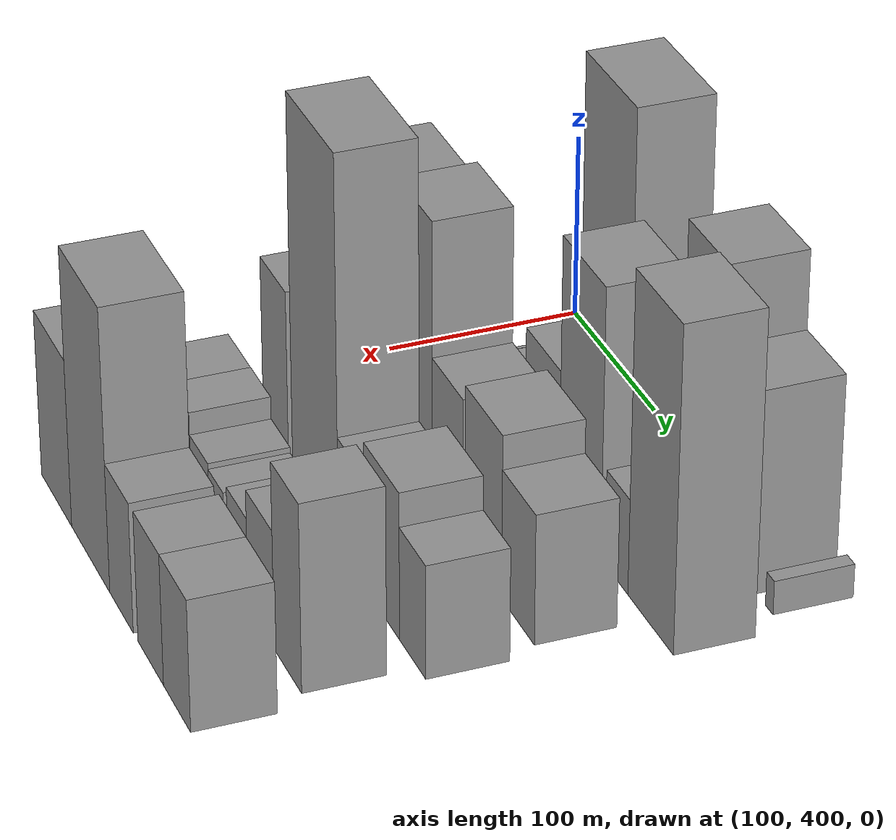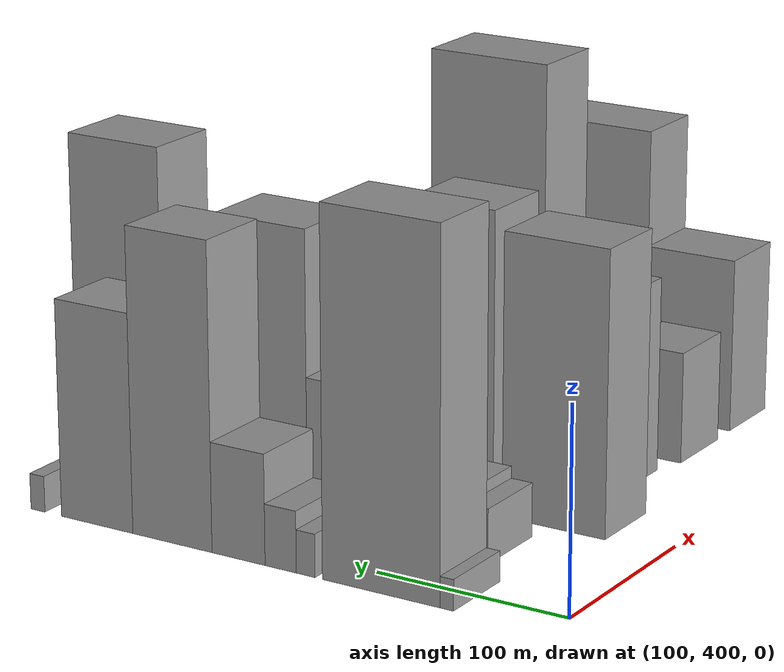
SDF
<sdf version="1.6">
 <world name="default">
  <model name="building_34">
   <static>1</static>
   <pose>100.0000 450.9216 0 0.000000 0.000000 0.000000</pose>
   <link name="link">
    <pose>0 0 7.50 0 0 0</pose>
    <collision name="collision"><geometry><box><size>40.0000 7.1123 15.0000</size></box></geometry></collision>
    <visual name="visual">
     <cast_shadows>0</cast_shadows>
     <geometry><box><size>40.0000 7.1123 15.0000</size></box></geometry>
     <material>
      <script>
       <uri>model://grey_wall/materials/scripts</uri>
       <uri>model://grey_wall/materials/textures</uri>
       <name>vrc/grey_wall</name>
      </script>
     </material>
    </visual>
   </link>
  </model>
  <model name="building_35">
   <static>1</static>
   <pose>100.0000 485.5800 0 0.000000 0.000000 0.000000</pose>
   <link name="link">
    <pose>0 0 88.50 0 0 0</pose>
    <collision name="collision"><geometry><box><size>40.0000 62.2045 177.0000</size></box></geometry></collision>
    <visual name="visual">
     <cast_shadows>0</cast_shadows>
     <geometry><box><size>40.0000 62.2045 177.0000</size></box></geometry>
     <material>
      <script>
       <uri>model://grey_wall/materials/scripts</uri>
       <uri>model://grey_wall/materials/textures</uri>
       <name>vrc/grey_wall</name>
      </script>
     </material>
    </visual>
   </link>
  </model>
  <model name="building_36">
   <static>1</static>
   <pose>100.0000 525.7993 0 0.000000 0.000000 0.000000</pose>
   <link name="link">
    <pose>0 0 10.50 0 0 0</pose>
    <collision name="collision"><geometry><box><size>40.0000 10.2343 21.0000</size></box></geometry></collision>
    <visual name="visual">
     <cast_shadows>0</cast_shadows>
     <geometry><box><size>40.0000 10.2343 21.0000</size></box></geometry>
     <material>
      <script>
       <uri>model://grey_wall/materials/scripts</uri>
       <uri>model://grey_wall/materials/textures</uri>
       <name>vrc/grey_wall</name>
      </script>
     </material>
    </visual>
   </link>
  </model>
  <model name="building_37">
   <static>1</static>
   <pose>100.0000 539.4834 0 0.000000 0.000000 0.000000</pose>
   <link name="link">
    <pose>0 0 15.00 0 0 0</pose>
    <collision name="collision"><geometry><box><size>40.0000 17.1339 30.0000</size></box></geometry></collision>
    <visual name="visual">
     <cast_shadows>0</cast_shadows>
     <geometry><box><size>40.0000 17.1339 30.0000</size></box></geometry>
     <material>
      <script>
       <uri>model://grey_wall/materials/scripts</uri>
       <uri>model://grey_wall/materials/textures</uri>
       <name>vrc/grey_wall</name>
      </script>
     </material>
    </visual>
   </link>
  </model>
  <model name="building_38">
   <static>1</static>
   <pose>100.0000 562.8579 0 0.000000 0.000000 0.000000</pose>
   <link name="link">
    <pose>0 0 27.00 0 0 0</pose>
    <collision name="collision"><geometry><box><size>40.0000 29.6151 54.0000</size></box></geometry></collision>
    <visual name="visual">
     <cast_shadows>0</cast_shadows>
     <geometry><box><size>40.0000 29.6151 54.0000</size></box></geometry>
     <material>
      <script>
       <uri>model://grey_wall/materials/scripts</uri>
       <uri>model://grey_wall/materials/textures</uri>
       <name>vrc/grey_wall</name>
      </script>
     </material>
    </visual>
   </link>
  </model>
  <model name="building_39">
   <static>1</static>
   <pose>100.0000 600.3225 0 0.000000 0.000000 0.000000</pose>
   <link name="link">
    <pose>0 0 75.00 0 0 0</pose>
    <collision name="collision"><geometry><box><size>40.0000 45.3142 150.0000</size></box></geometry></collision>
    <visual name="visual">
     <cast_shadows>0</cast_shadows>
     <geometry><box><size>40.0000 45.3142 150.0000</size></box></geometry>
     <material>
      <script>
       <uri>model://grey_wall/materials/scripts</uri>
       <uri>model://grey_wall/materials/textures</uri>
       <name>vrc/grey_wall</name>
      </script>
     </material>
    </visual>
   </link>
  </model>
  <model name="building_40">
   <static>1</static>
   <pose>100.0000 643.9339 0 0.000000 0.000000 0.000000</pose>
   <link name="link">
    <pose>0 0 54.00 0 0 0</pose>
    <collision name="collision"><geometry><box><size>40.0000 41.9087 108.0000</size></box></geometry></collision>
    <visual name="visual">
     <cast_shadows>0</cast_shadows>
     <geometry><box><size>40.0000 41.9087 108.0000</size></box></geometry>
     <material>
      <script>
       <uri>model://grey_wall/materials/scripts</uri>
       <uri>model://grey_wall/materials/textures</uri>
       <name>vrc/grey_wall</name>
      </script>
     </material>
    </visual>
   </link>
  </model>
  <model name="building_41">
   <static>1</static>
   <pose>100.0000 679.0799 0 0.000000 0.000000 0.000000</pose>
   <link name="link">
    <pose>0 0 9.00 0 0 0</pose>
    <collision name="collision"><geometry><box><size>40.0000 8.3832 18.0000</size></box></geometry></collision>
    <visual name="visual">
     <cast_shadows>0</cast_shadows>
     <geometry><box><size>40.0000 8.3832 18.0000</size></box></geometry>
     <material>
      <script>
       <uri>model://grey_wall/materials/scripts</uri>
       <uri>model://grey_wall/materials/textures</uri>
       <name>vrc/grey_wall</name>
      </script>
     </material>
    </visual>
   </link>
  </model>
  <model name="building_82">
   <static>1</static>
   <pose>155.0000 468.2930 0 0.000000 0.000000 0.000000</pose>
   <link name="link">
    <pose>0 0 13.50 0 0 0</pose>
    <collision name="collision"><geometry><box><size>40.0000 11.3591 27.0000</size></box></geometry></collision>
    <visual name="visual">
     <cast_shadows>0</cast_shadows>
     <geometry><box><size>40.0000 11.3591 27.0000</size></box></geometry>
     <material>
      <script>
       <uri>model://grey_wall/materials/scripts</uri>
       <uri>model://grey_wall/materials/textures</uri>
       <name>vrc/grey_wall</name>
      </script>
     </material>
    </visual>
   </link>
  </model>
  <model name="building_83">
   <static>1</static>
   <pose>155.0000 483.4692 0 0.000000 0.000000 0.000000</pose>
   <link name="link">
    <pose>0 0 16.50 0 0 0</pose>
    <collision name="collision"><geometry><box><size>40.0000 18.9933 33.0000</size></box></geometry></collision>
    <visual name="visual">
     <cast_shadows>0</cast_shadows>
     <geometry><box><size>40.0000 18.9933 33.0000</size></box></geometry>
     <material>
      <script>
       <uri>model://grey_wall/materials/scripts</uri>
       <uri>model://grey_wall/materials/textures</uri>
       <name>vrc/grey_wall</name>
      </script>
     </material>
    </visual>
   </link>
  </model>
  <model name="building_84">
   <static>1</static>
   <pose>155.0000 505.7651 0 0.000000 0.000000 0.000000</pose>
   <link name="link">
    <pose>0 0 22.50 0 0 0</pose>
    <collision name="collision"><geometry><box><size>40.0000 25.5984 45.0000</size></box></geometry></collision>
    <visual name="visual">
     <cast_shadows>0</cast_shadows>
     <geometry><box><size>40.0000 25.5984 45.0000</size></box></geometry>
     <material>
      <script>
       <uri>model://grey_wall/materials/scripts</uri>
       <uri>model://grey_wall/materials/textures</uri>
       <name>vrc/grey_wall</name>
      </script>
     </material>
    </visual>
   </link>
  </model>
  <model name="building_85">
   <static>1</static>
   <pose>155.0000 540.0962 0 0.000000 0.000000 0.000000</pose>
   <link name="link">
    <pose>0 0 36.00 0 0 0</pose>
    <collision name="collision"><geometry><box><size>40.0000 43.0639 72.0000</size></box></geometry></collision>
    <visual name="visual">
     <cast_shadows>0</cast_shadows>
     <geometry><box><size>40.0000 43.0639 72.0000</size></box></geometry>
     <material>
      <script>
       <uri>model://grey_wall/materials/scripts</uri>
       <uri>model://grey_wall/materials/textures</uri>
       <name>vrc/grey_wall</name>
      </script>
     </material>
    </visual>
   </link>
  </model>
  <model name="building_86">
   <static>1</static>
   <pose>155.0000 587.0504 0 0.000000 0.000000 0.000000</pose>
   <link name="link">
    <pose>0 0 72.00 0 0 0</pose>
    <collision name="collision"><geometry><box><size>40.0000 50.8444 144.0000</size></box></geometry></collision>
    <visual name="visual">
     <cast_shadows>0</cast_shadows>
     <geometry><box><size>40.0000 50.8444 144.0000</size></box></geometry>
     <material>
      <script>
       <uri>model://grey_wall/materials/scripts</uri>
       <uri>model://grey_wall/materials/textures</uri>
       <name>vrc/grey_wall</name>
      </script>
     </material>
    </visual>
   </link>
  </model>
  <model name="building_87">
   <static>1</static>
   <pose>155.0000 631.0761 0 0.000000 0.000000 0.000000</pose>
   <link name="link">
    <pose>0 0 25.50 0 0 0</pose>
    <collision name="collision"><geometry><box><size>40.0000 27.2070 51.0000</size></box></geometry></collision>
    <visual name="visual">
     <cast_shadows>0</cast_shadows>
     <geometry><box><size>40.0000 27.2070 51.0000</size></box></geometry>
     <material>
      <script>
       <uri>model://grey_wall/materials/scripts</uri>
       <uri>model://grey_wall/materials/textures</uri>
       <name>vrc/grey_wall</name>
      </script>
     </material>
    </visual>
   </link>
  </model>
  <model name="building_88">
   <static>1</static>
   <pose>155.0000 670.8240 0 0.000000 0.000000 0.000000</pose>
   <link name="link">
    <pose>0 0 85.50 0 0 0</pose>
    <collision name="collision"><geometry><box><size>40.0000 52.2889 171.0000</size></box></geometry></collision>
    <visual name="visual">
     <cast_shadows>0</cast_shadows>
     <geometry><box><size>40.0000 52.2889 171.0000</size></box></geometry>
     <material>
      <script>
       <uri>model://grey_wall/materials/scripts</uri>
       <uri>model://grey_wall/materials/textures</uri>
       <name>vrc/grey_wall</name>
      </script>
     </material>
    </visual>
   </link>
  </model>
  <model name="building_134">
   <static>1</static>
   <pose>210.0000 459.7315 0 0.000000 0.000000 0.000000</pose>
   <link name="link">
    <pose>0 0 70.50 0 0 0</pose>
    <collision name="collision"><geometry><box><size>40.0000 55.6308 141.0000</size></box></geometry></collision>
    <visual name="visual">
     <cast_shadows>0</cast_shadows>
     <geometry><box><size>40.0000 55.6308 141.0000</size></box></geometry>
     <material>
      <script>
       <uri>model://grey_wall/materials/scripts</uri>
       <uri>model://grey_wall/materials/textures</uri>
       <name>vrc/grey_wall</name>
      </script>
     </material>
    </visual>
   </link>
  </model>
  <model name="building_135">
   <static>1</static>
   <pose>210.0000 515.5451 0 0.000000 0.000000 0.000000</pose>
   <link name="link">
    <pose>0 0 75.00 0 0 0</pose>
    <collision name="collision"><geometry><box><size>40.0000 45.9964 150.0000</size></box></geometry></collision>
    <visual name="visual">
     <cast_shadows>0</cast_shadows>
     <geometry><box><size>40.0000 45.9964 150.0000</size></box></geometry>
     <material>
      <script>
       <uri>model://grey_wall/materials/scripts</uri>
       <uri>model://grey_wall/materials/textures</uri>
       <name>vrc/grey_wall</name>
      </script>
     </material>
    </visual>
   </link>
  </model>
  <model name="building_136">
   <static>1</static>
   <pose>210.0000 558.3514 0 0.000000 0.000000 0.000000</pose>
   <link name="link">
    <pose>0 0 39.00 0 0 0</pose>
    <collision name="collision"><geometry><box><size>40.0000 39.6162 78.0000</size></box></geometry></collision>
    <visual name="visual">
     <cast_shadows>0</cast_shadows>
     <geometry><box><size>40.0000 39.6162 78.0000</size></box></geometry>
     <material>
      <script>
       <uri>model://grey_wall/materials/scripts</uri>
       <uri>model://grey_wall/materials/textures</uri>
       <name>vrc/grey_wall</name>
      </script>
     </material>
    </visual>
   </link>
  </model>
  <model name="building_137">
   <static>1</static>
   <pose>210.0000 604.2230 0 0.000000 0.000000 0.000000</pose>
   <link name="link">
    <pose>0 0 43.50 0 0 0</pose>
    <collision name="collision"><geometry><box><size>40.0000 46.1271 87.0000</size></box></geometry></collision>
    <visual name="visual">
     <cast_shadows>0</cast_shadows>
     <geometry><box><size>40.0000 46.1271 87.0000</size></box></geometry>
     <material>
      <script>
       <uri>model://grey_wall/materials/scripts</uri>
       <uri>model://grey_wall/materials/textures</uri>
       <name>vrc/grey_wall</name>
      </script>
     </material>
    </visual>
   </link>
  </model>
  <model name="building_138">
   <static>1</static>
   <pose>210.0000 647.3601 0 0.000000 0.000000 0.000000</pose>
   <link name="link">
    <pose>0 0 34.50 0 0 0</pose>
    <collision name="collision"><geometry><box><size>40.0000 40.1471 69.0000</size></box></geometry></collision>
    <visual name="visual">
     <cast_shadows>0</cast_shadows>
     <geometry><box><size>40.0000 40.1471 69.0000</size></box></geometry>
     <material>
      <script>
       <uri>model://grey_wall/materials/scripts</uri>
       <uri>model://grey_wall/materials/textures</uri>
       <name>vrc/grey_wall</name>
      </script>
     </material>
    </visual>
   </link>
  </model>
  <model name="building_186">
   <static>1</static>
   <pose>265.0000 473.2966 0 0.000000 0.000000 0.000000</pose>
   <link name="link">
    <pose>0 0 49.50 0 0 0</pose>
    <collision name="collision"><geometry><box><size>40.0000 36.3007 99.0000</size></box></geometry></collision>
    <visual name="visual">
     <cast_shadows>0</cast_shadows>
     <geometry><box><size>40.0000 36.3007 99.0000</size></box></geometry>
     <material>
      <script>
       <uri>model://grey_wall/materials/scripts</uri>
       <uri>model://grey_wall/materials/textures</uri>
       <name>vrc/grey_wall</name>
      </script>
     </material>
    </visual>
   </link>
  </model>
  <model name="building_187">
   <static>1</static>
   <pose>265.0000 529.3288 0 0.000000 0.000000 0.000000</pose>
   <link name="link">
    <pose>0 0 103.50 0 0 0</pose>
    <collision name="collision"><geometry><box><size>40.0000 63.7636 207.0000</size></box></geometry></collision>
    <visual name="visual">
     <cast_shadows>0</cast_shadows>
     <geometry><box><size>40.0000 63.7636 207.0000</size></box></geometry>
     <material>
      <script>
       <uri>model://grey_wall/materials/scripts</uri>
       <uri>model://grey_wall/materials/textures</uri>
       <name>vrc/grey_wall</name>
      </script>
     </material>
    </visual>
   </link>
  </model>
  <model name="building_188">
   <static>1</static>
   <pose>265.0000 578.9576 0 0.000000 0.000000 0.000000</pose>
   <link name="link">
    <pose>0 0 30.00 0 0 0</pose>
    <collision name="collision"><geometry><box><size>40.0000 35.4940 60.0000</size></box></geometry></collision>
    <visual name="visual">
     <cast_shadows>0</cast_shadows>
     <geometry><box><size>40.0000 35.4940 60.0000</size></box></geometry>
     <material>
      <script>
       <uri>model://grey_wall/materials/scripts</uri>
       <uri>model://grey_wall/materials/textures</uri>
       <name>vrc/grey_wall</name>
      </script>
     </material>
    </visual>
   </link>
  </model>
  <model name="building_189">
   <static>1</static>
   <pose>265.0000 619.3777 0 0.000000 0.000000 0.000000</pose>
   <link name="link">
    <pose>0 0 39.00 0 0 0</pose>
    <collision name="collision"><geometry><box><size>40.0000 45.3461 78.0000</size></box></geometry></collision>
    <visual name="visual">
     <cast_shadows>0</cast_shadows>
     <geometry><box><size>40.0000 45.3461 78.0000</size></box></geometry>
     <material>
      <script>
       <uri>model://grey_wall/materials/scripts</uri>
       <uri>model://grey_wall/materials/textures</uri>
       <name>vrc/grey_wall</name>
      </script>
     </material>
    </visual>
   </link>
  </model>
  <model name="building_190">
   <static>1</static>
   <pose>265.0000 658.6662 0 0.000000 0.000000 0.000000</pose>
   <link name="link">
    <pose>0 0 30.00 0 0 0</pose>
    <collision name="collision"><geometry><box><size>40.0000 33.2310 60.0000</size></box></geometry></collision>
    <visual name="visual">
     <cast_shadows>0</cast_shadows>
     <geometry><box><size>40.0000 33.2310 60.0000</size></box></geometry>
     <material>
      <script>
       <uri>model://grey_wall/materials/scripts</uri>
       <uri>model://grey_wall/materials/textures</uri>
       <name>vrc/grey_wall</name>
      </script>
     </material>
    </visual>
   </link>
  </model>
  <model name="building_235">
   <static>1</static>
   <pose>320.0000 466.4040 0 0.000000 0.000000 0.000000</pose>
   <link name="link">
    <pose>0 0 28.50 0 0 0</pose>
    <collision name="collision"><geometry><box><size>40.0000 32.9806 57.0000</size></box></geometry></collision>
    <visual name="visual">
     <cast_shadows>0</cast_shadows>
     <geometry><box><size>40.0000 32.9806 57.0000</size></box></geometry>
     <material>
      <script>
       <uri>model://grey_wall/materials/scripts</uri>
       <uri>model://grey_wall/materials/textures</uri>
       <name>vrc/grey_wall</name>
      </script>
     </material>
    </visual>
   </link>
  </model>
  <model name="building_236">
   <static>1</static>
   <pose>320.0000 497.2661 0 0.000000 0.000000 0.000000</pose>
   <link name="link">
    <pose>0 0 28.50 0 0 0</pose>
    <collision name="collision"><geometry><box><size>40.0000 28.7436 57.0000</size></box></geometry></collision>
    <visual name="visual">
     <cast_shadows>0</cast_shadows>
     <geometry><box><size>40.0000 28.7436 57.0000</size></box></geometry>
     <material>
      <script>
       <uri>model://grey_wall/materials/scripts</uri>
       <uri>model://grey_wall/materials/textures</uri>
       <name>vrc/grey_wall</name>
      </script>
     </material>
    </visual>
   </link>
  </model>
  <model name="building_237">
   <static>1</static>
   <pose>320.0000 525.0618 0 0.000000 0.000000 0.000000</pose>
   <link name="link">
    <pose>0 0 22.50 0 0 0</pose>
    <collision name="collision"><geometry><box><size>40.0000 26.8478 45.0000</size></box></geometry></collision>
    <visual name="visual">
     <cast_shadows>0</cast_shadows>
     <geometry><box><size>40.0000 26.8478 45.0000</size></box></geometry>
     <material>
      <script>
       <uri>model://grey_wall/materials/scripts</uri>
       <uri>model://grey_wall/materials/textures</uri>
       <name>vrc/grey_wall</name>
      </script>
     </material>
    </visual>
   </link>
  </model>
  <model name="building_238">
   <static>1</static>
   <pose>320.0000 549.3088 0 0.000000 0.000000 0.000000</pose>
   <link name="link">
    <pose>0 0 21.00 0 0 0</pose>
    <collision name="collision"><geometry><box><size>40.0000 21.6463 42.0000</size></box></geometry></collision>
    <visual name="visual">
     <cast_shadows>0</cast_shadows>
     <geometry><box><size>40.0000 21.6463 42.0000</size></box></geometry>
     <material>
      <script>
       <uri>model://grey_wall/materials/scripts</uri>
       <uri>model://grey_wall/materials/textures</uri>
       <name>vrc/grey_wall</name>
      </script>
     </material>
    </visual>
   </link>
  </model>
  <model name="building_239">
   <static>1</static>
   <pose>320.0000 579.1509 0 0.000000 0.000000 0.000000</pose>
   <link name="link">
    <pose>0 0 24.00 0 0 0</pose>
    <collision name="collision"><geometry><box><size>40.0000 28.0380 48.0000</size></box></geometry></collision>
    <visual name="visual">
     <cast_shadows>0</cast_shadows>
     <geometry><box><size>40.0000 28.0380 48.0000</size></box></geometry>
     <material>
      <script>
       <uri>model://grey_wall/materials/scripts</uri>
       <uri>model://grey_wall/materials/textures</uri>
       <name>vrc/grey_wall</name>
      </script>
     </material>
    </visual>
   </link>
  </model>
  <model name="building_240">
   <static>1</static>
   <pose>320.0000 611.2269 0 0.000000 0.000000 0.000000</pose>
   <link name="link">
    <pose>0 0 31.50 0 0 0</pose>
    <collision name="collision"><geometry><box><size>40.0000 36.1139 63.0000</size></box></geometry></collision>
    <visual name="visual">
     <cast_shadows>0</cast_shadows>
     <geometry><box><size>40.0000 36.1139 63.0000</size></box></geometry>
     <material>
      <script>
       <uri>model://grey_wall/materials/scripts</uri>
       <uri>model://grey_wall/materials/textures</uri>
       <name>vrc/grey_wall</name>
      </script>
     </material>
    </visual>
   </link>
  </model>
  <model name="building_241">
   <static>1</static>
   <pose>320.0000 647.6502 0 0.000000 0.000000 0.000000</pose>
   <link name="link">
    <pose>0 0 49.50 0 0 0</pose>
    <collision name="collision"><geometry><box><size>40.0000 36.7329 99.0000</size></box></geometry></collision>
    <visual name="visual">
     <cast_shadows>0</cast_shadows>
     <geometry><box><size>40.0000 36.7329 99.0000</size></box></geometry>
     <material>
      <script>
       <uri>model://grey_wall/materials/scripts</uri>
       <uri>model://grey_wall/materials/textures</uri>
       <name>vrc/grey_wall</name>
      </script>
     </material>
    </visual>
   </link>
  </model>
  <model name="building_289">
   <static>1</static>
   <pose>375.0000 475.1379 0 0.000000 0.000000 0.000000</pose>
   <link name="link">
    <pose>0 0 45.00 0 0 0</pose>
    <collision name="collision"><geometry><box><size>40.0000 48.7795 90.0000</size></box></geometry></collision>
    <visual name="visual">
     <cast_shadows>0</cast_shadows>
     <geometry><box><size>40.0000 48.7795 90.0000</size></box></geometry>
     <material>
      <script>
       <uri>model://grey_wall/materials/scripts</uri>
       <uri>model://grey_wall/materials/textures</uri>
       <name>vrc/grey_wall</name>
      </script>
     </material>
    </visual>
   </link>
  </model>
  <model name="building_290">
   <static>1</static>
   <pose>375.0000 529.2934 0 0.000000 0.000000 0.000000</pose>
   <link name="link">
    <pose>0 0 75.00 0 0 0</pose>
    <collision name="collision"><geometry><box><size>40.0000 59.5315 150.0000</size></box></geometry></collision>
    <visual name="visual">
     <cast_shadows>0</cast_shadows>
     <geometry><box><size>40.0000 59.5315 150.0000</size></box></geometry>
     <material>
      <script>
       <uri>model://grey_wall/materials/scripts</uri>
       <uri>model://grey_wall/materials/textures</uri>
       <name>vrc/grey_wall</name>
      </script>
     </material>
    </visual>
   </link>
  </model>
  <model name="building_291">
   <static>1</static>
   <pose>375.0000 576.6557 0 0.000000 0.000000 0.000000</pose>
   <link name="link">
    <pose>0 0 34.50 0 0 0</pose>
    <collision name="collision"><geometry><box><size>40.0000 35.1930 69.0000</size></box></geometry></collision>
    <visual name="visual">
     <cast_shadows>0</cast_shadows>
     <geometry><box><size>40.0000 35.1930 69.0000</size></box></geometry>
     <material>
      <script>
       <uri>model://grey_wall/materials/scripts</uri>
       <uri>model://grey_wall/materials/textures</uri>
       <name>vrc/grey_wall</name>
      </script>
     </material>
    </visual>
   </link>
  </model>
  <model name="building_292">
   <static>1</static>
   <pose>375.0000 619.8061 0 0.000000 0.000000 0.000000</pose>
   <link name="link">
    <pose>0 0 34.50 0 0 0</pose>
    <collision name="collision"><geometry><box><size>40.0000 37.1077 69.0000</size></box></geometry></collision>
    <visual name="visual">
     <cast_shadows>0</cast_shadows>
     <geometry><box><size>40.0000 37.1077 69.0000</size></box></geometry>
     <material>
      <script>
       <uri>model://grey_wall/materials/scripts</uri>
       <uri>model://grey_wall/materials/textures</uri>
       <name>vrc/grey_wall</name>
      </script>
     </material>
    </visual>
   </link>
  </model>
  <model name="building_293">
   <static>1</static>
   <pose>375.0000 657.5178 0 0.000000 0.000000 0.000000</pose>
   <link name="link">
    <pose>0 0 34.50 0 0 0</pose>
    <collision name="collision"><geometry><box><size>40.0000 38.3158 69.0000</size></box></geometry></collision>
    <visual name="visual">
     <cast_shadows>0</cast_shadows>
     <geometry><box><size>40.0000 38.3158 69.0000</size></box></geometry>
     <material>
      <script>
       <uri>model://grey_wall/materials/scripts</uri>
       <uri>model://grey_wall/materials/textures</uri>
       <name>vrc/grey_wall</name>
      </script>
     </material>
    </visual>
   </link>
  </model>
 </world>
</sdf>
